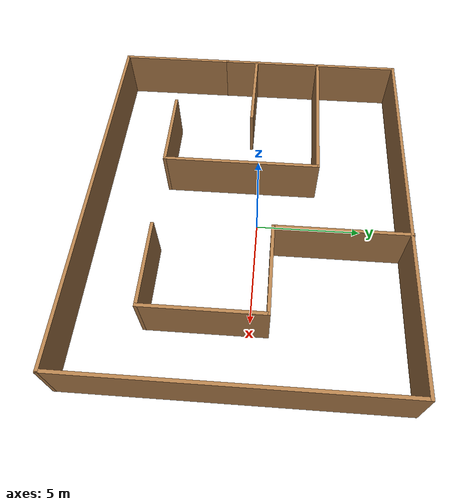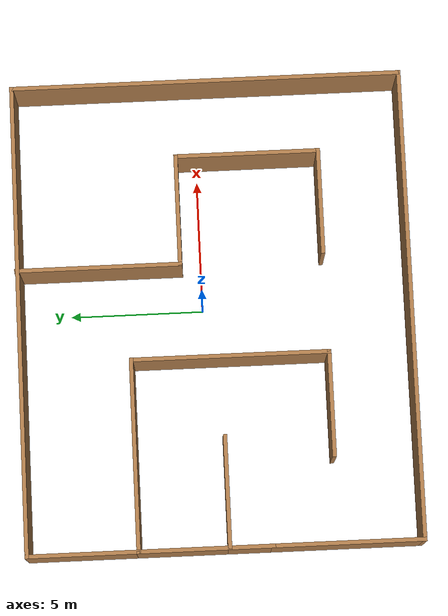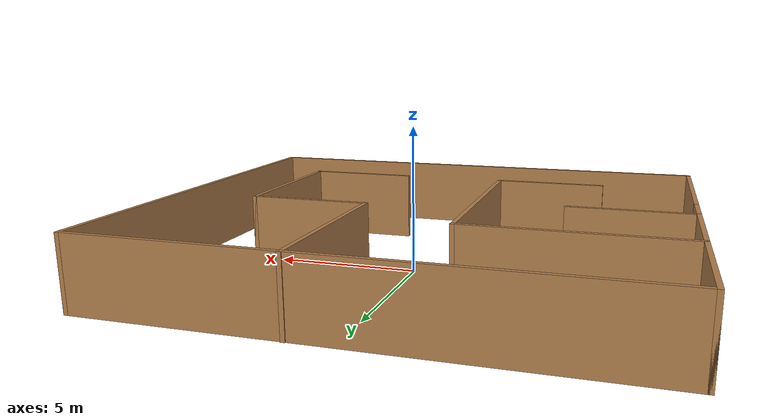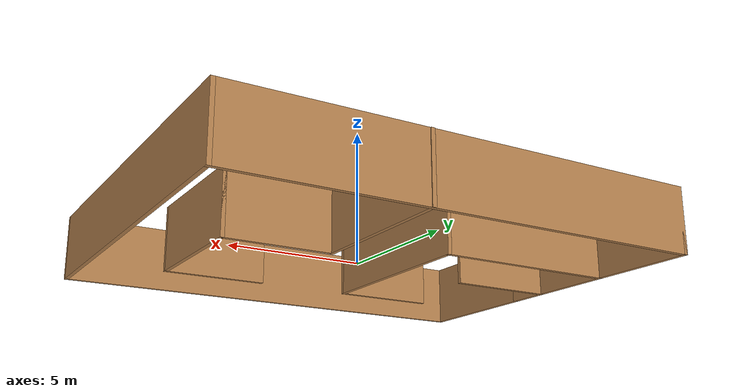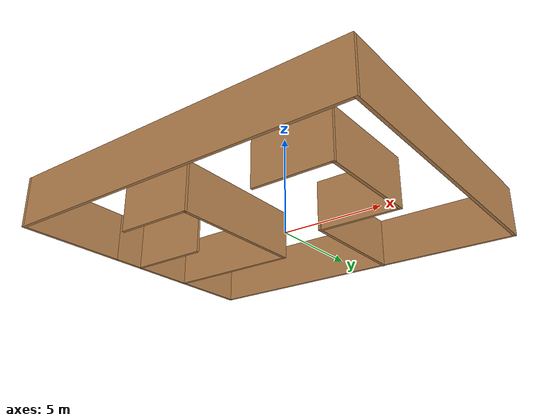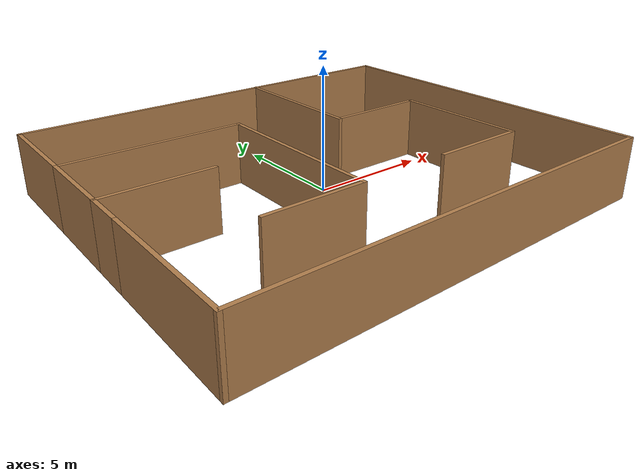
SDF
<?xml version='1.0'?>
<sdf version='1.6'>
  <model name='maze_1'>
    <pose frame=''>-0.37 -0.444303 0 0 -0 0</pose>
    <link name='Wall_11'>
      <collision name='Wall_11_Collision'>
        <geometry>
          <box>
            <size>4.25 0.15 2.5</size>
          </box>
        </geometry>
        <pose frame=''>0 0 1.25 0 -0 0</pose>
      </collision>
      <visual name='Wall_11_Visual'>
        <pose frame=''>0 0 1.25 0 -0 0</pose>
        <geometry>
          <box>
            <size>4.25 0.15 2.5</size>
          </box>
        </geometry>
        <material>
          <script>
            <uri>file://media/materials/scripts/gazebo.material</uri>
            <name>Gazebo/Wood</name>
          </script>
          <ambient>1 1 1 1</ambient>
        </material>
        <meta>
          <layer>0</layer>
        </meta>
      </visual>
      <pose frame=''>-8.8 5.2343 0 0 -0 1.5708</pose>
    </link>
    <link name='Wall_13'>
      <collision name='Wall_13_Collision'>
        <geometry>
          <box>
            <size>17.75 0.15 2.5</size>
          </box>
        </geometry>
        <pose frame=''>0 0 1.25 0 -0 0</pose>
      </collision>
      <visual name='Wall_13_Visual'>
        <pose frame=''>0 0 1.25 0 -0 0</pose>
        <geometry>
          <box>
            <size>17.75 0.15 2.5</size>
          </box>
        </geometry>
        <material>
          <script>
            <uri>file://media/materials/scripts/gazebo.material</uri>
            <name>Gazebo/Wood</name>
          </script>
          <ambient>1 1 1 1</ambient>
        </material>
        <meta>
          <layer>0</layer>
        </meta>
      </visual>
      <pose frame=''>-0 7.2843 0 0 -0 0</pose>
    </link>
    <link name='Wall_14'>
      <collision name='Wall_14_Collision'>
        <geometry>
          <box>
            <size>14.75 0.15 2.5</size>
          </box>
        </geometry>
        <pose frame=''>0 0 1.25 0 -0 0</pose>
      </collision>
      <visual name='Wall_14_Visual'>
        <pose frame=''>0 0 1.25 0 -0 0</pose>
        <geometry>
          <box>
            <size>14.75 0.15 2.5</size>
          </box>
        </geometry>
        <material>
          <script>
            <uri>file://media/materials/scripts/gazebo.material</uri>
            <name>Gazebo/Wood</name>
          </script>
          <ambient>1 1 1 1</ambient>
        </material>
        <meta>
          <layer>0</layer>
        </meta>
      </visual>
      <pose frame=''>8.8 -0.015697 0 0 -0 -1.5708</pose>
    </link>
    <link name='Wall_15'>
      <collision name='Wall_15_Collision'>
        <geometry>
          <box>
            <size>17.75 0.15 2.5</size>
          </box>
        </geometry>
        <pose frame=''>0 0 1.25 0 -0 0</pose>
      </collision>
      <visual name='Wall_15_Visual'>
        <pose frame=''>0 0 1.25 0 -0 0</pose>
        <geometry>
          <box>
            <size>17.75 0.15 2.5</size>
          </box>
        </geometry>
        <material>
          <script>
            <uri>file://media/materials/scripts/gazebo.material</uri>
            <name>Gazebo/Wood</name>
          </script>
          <ambient>1 1 1 1</ambient>
        </material>
        <meta>
          <layer>0</layer>
        </meta>
      </visual>
      <pose frame=''>-0 -7.3157 0 0 -0 3.14159</pose>
    </link>
    <link name='Wall_16'>
      <collision name='Wall_16_Collision'>
        <geometry>
          <box>
            <size>5.7 0.15 2.5</size>
          </box>
        </geometry>
        <pose frame=''>0 0 1.25 0 -0 0</pose>
      </collision>
      <visual name='Wall_16_Visual'>
        <pose frame=''>0 0 1.25 0 -0 0</pose>
        <geometry>
          <box>
            <size>5.7 0.15 2.5</size>
          </box>
        </geometry>
        <material>
          <script>
            <uri>file://media/materials/scripts/gazebo.material</uri>
            <name>Gazebo/Wood</name>
          </script>
          <ambient>1 1 1 1</ambient>
        </material>
        <meta>
          <layer>0</layer>
        </meta>
      </visual>
      <pose frame=''>-8.8 -4.5407 0 0 -0 1.5708</pose>
    </link>
    <link name='Wall_18'>
      <collision name='Wall_18_Collision'>
        <geometry>
          <box>
            <size>7.25 0.15 2.5</size>
          </box>
        </geometry>
        <pose frame=''>0 0 1.25 0 -0 0</pose>
      </collision>
      <visual name='Wall_18_Visual'>
        <pose frame=''>0 0 1.25 0 -0 0</pose>
        <geometry>
          <box>
            <size>7.25 0.15 2.5</size>
          </box>
        </geometry>
        <material>
          <script>
            <uri>file://media/materials/scripts/gazebo.material</uri>
            <name>Gazebo/Wood</name>
          </script>
          <ambient>1 1 1 1</ambient>
        </material>
        <meta>
          <layer>0</layer>
        </meta>
      </visual>
      <pose frame=''>-5.25 3.1843 0 0 -0 0</pose>
    </link>
    <link name='Wall_19'>
      <collision name='Wall_19_Collision'>
        <geometry>
          <box>
            <size>7.5 0.15 2.5</size>
          </box>
        </geometry>
        <pose frame=''>0 0 1.25 0 -0 0</pose>
      </collision>
      <visual name='Wall_19_Visual'>
        <pose frame=''>0 0 1.25 0 -0 0</pose>
        <geometry>
          <box>
            <size>7.5 0.15 2.5</size>
          </box>
        </geometry>
        <material>
          <script>
            <uri>file://media/materials/scripts/gazebo.material</uri>
            <name>Gazebo/Wood</name>
          </script>
          <ambient>1 1 1 1</ambient>
        </material>
        <meta>
          <layer>0</layer>
        </meta>
      </visual>
      <pose frame=''>-1.7 -0.490697 0 0 -0 -1.5708</pose>
    </link>
    <link name='Wall_20'>
      <collision name='Wall_20_Collision'>
        <geometry>
          <box>
            <size>4 0.15 2.5</size>
          </box>
        </geometry>
        <pose frame=''>0 0 1.25 0 -0 0</pose>
      </collision>
      <visual name='Wall_20_Visual'>
        <pose frame=''>0 0 1.25 0 -0 0</pose>
        <geometry>
          <box>
            <size>4 0.15 2.5</size>
          </box>
        </geometry>
        <material>
          <script>
            <uri>file://media/materials/scripts/gazebo.material</uri>
            <name>Gazebo/Wood</name>
          </script>
          <ambient>1 1 1 1</ambient>
        </material>
        <meta>
          <layer>0</layer>
        </meta>
      </visual>
      <pose frame=''>-3.625 -4.1657 0 0 -0 3.14159</pose>
    </link>
    <link name='Wall_22'>
      <collision name='Wall_22_Collision'>
        <geometry>
          <box>
            <size>6.25 0.15 2.5</size>
          </box>
        </geometry>
        <pose frame=''>0 0 1.25 0 -0 0</pose>
      </collision>
      <visual name='Wall_22_Visual'>
        <pose frame=''>0 0 1.25 0 -0 0</pose>
        <geometry>
          <box>
            <size>6.25 0.15 2.5</size>
          </box>
        </geometry>
        <material>
          <script>
            <uri>file://media/materials/scripts/gazebo.material</uri>
            <name>Gazebo/Wood</name>
          </script>
          <ambient>1 1 1 1</ambient>
        </material>
        <meta>
          <layer>0</layer>
        </meta>
      </visual>
      <pose frame=''>1.82713 4.2657 0 0 -0 -1.5708</pose>
    </link>
    <link name='Wall_23'>
      <collision name='Wall_23_Collision'>
        <geometry>
          <box>
            <size>4.25 0.15 2.5</size>
          </box>
        </geometry>
        <pose frame=''>0 0 1.25 0 -0 0</pose>
      </collision>
      <visual name='Wall_23_Visual'>
        <pose frame=''>0 0 1.25 0 -0 0</pose>
        <geometry>
          <box>
            <size>4.25 0.15 2.5</size>
          </box>
        </geometry>
        <material>
          <script>
            <uri>file://media/materials/scripts/gazebo.material</uri>
            <name>Gazebo/Wood</name>
          </script>
          <ambient>1 1 1 1</ambient>
        </material>
        <meta>
          <layer>0</layer>
        </meta>
      </visual>
      <pose frame=''>3.87713 1.2157 0 0 -0 0</pose>
    </link>
    <link name='Wall_24'>
      <collision name='Wall_24_Collision'>
        <geometry>
          <box>
            <size>5.5 0.15 2.5</size>
          </box>
        </geometry>
        <pose frame=''>0 0 1.25 0 -0 0</pose>
      </collision>
      <visual name='Wall_24_Visual'>
        <pose frame=''>0 0 1.25 0 -0 0</pose>
        <geometry>
          <box>
            <size>5.5 0.15 2.5</size>
          </box>
        </geometry>
        <material>
          <script>
            <uri>file://media/materials/scripts/gazebo.material</uri>
            <name>Gazebo/Wood</name>
          </script>
          <ambient>1 1 1 1</ambient>
        </material>
        <meta>
          <layer>0</layer>
        </meta>
      </visual>
      <pose frame=''>5.92713 -1.4593 0 0 -0 -1.5708</pose>
    </link>
    <link name='Wall_25'>
      <collision name='Wall_25_Collision'>
        <geometry>
          <box>
            <size>4 0.15 2.5</size>
          </box>
        </geometry>
        <pose frame=''>0 0 1.25 0 -0 0</pose>
      </collision>
      <visual name='Wall_25_Visual'>
        <pose frame=''>0 0 1.25 0 -0 0</pose>
        <geometry>
          <box>
            <size>4 0.15 2.5</size>
          </box>
        </geometry>
        <material>
          <script>
            <uri>file://media/materials/scripts/gazebo.material</uri>
            <name>Gazebo/Wood</name>
          </script>
          <ambient>1 1 1 1</ambient>
        </material>
        <meta>
          <layer>0</layer>
        </meta>
      </visual>
      <pose frame=''>4.00213 -4.1343 0 0 -0 3.14159</pose>
    </link>
    <link name='Wall_27'>
      <collision name='Wall_27_Collision'>
        <geometry>
          <box>
            <size>4.25 0.15 2.5</size>
          </box>
        </geometry>
        <pose frame=''>0 0 1.25 0 -0 0</pose>
      </collision>
      <visual name='Wall_27_Visual'>
        <pose frame=''>0 0 1.25 0 -0 0</pose>
        <geometry>
          <box>
            <size>4.25 0.15 2.5</size>
          </box>
        </geometry>
        <material>
          <script>
            <uri>file://media/materials/scripts/gazebo.material</uri>
            <name>Gazebo/Wood</name>
          </script>
          <ambient>1 1 1 1</ambient>
        </material>
        <meta>
          <layer>0</layer>
        </meta>
      </visual>
      <pose frame=''>-6.75 -0.165697 0 0 -0 0</pose>
    </link>
    <link name='Wall_7'>
      <collision name='Wall_7_Collision'>
        <geometry>
          <box>
            <size>1.75 0.15 2.5</size>
          </box>
        </geometry>
        <pose frame=''>0 0 1.25 0 -0 0</pose>
      </collision>
      <visual name='Wall_7_Visual'>
        <pose frame=''>0 0 1.25 0 -0 0</pose>
        <geometry>
          <box>
            <size>1.75 0.15 2.5</size>
          </box>
        </geometry>
        <material>
          <script>
            <uri>file://media/materials/scripts/gazebo.material</uri>
            <name>Gazebo/Wood</name>
          </script>
          <ambient>1 1 1 1</ambient>
        </material>
        <meta>
          <layer>0</layer>
        </meta>
      </visual>
      <pose frame=''>-8.8 -0.965697 0 0 -0 1.5708</pose>
    </link>
    <link name='Wall_9'>
      <collision name='Wall_9_Collision'>
        <geometry>
          <box>
            <size>3.5 0.15 2.5</size>
          </box>
        </geometry>
        <pose frame=''>0 0 1.25 0 -0 0</pose>
      </collision>
      <visual name='Wall_9_Visual'>
        <pose frame=''>0 0 1.25 0 -0 0</pose>
        <geometry>
          <box>
            <size>3.5 0.15 2.5</size>
          </box>
        </geometry>
        <material>
          <script>
            <uri>file://media/materials/scripts/gazebo.material</uri>
            <name>Gazebo/Wood</name>
          </script>
          <ambient>1 1 1 1</ambient>
        </material>
        <meta>
          <layer>0</layer>
        </meta>
      </visual>
      <pose frame=''>-8.8 1.5093 0 0 -0 1.5708</pose>
    </link>
    <static>1</static>
  </model>
</sdf>
